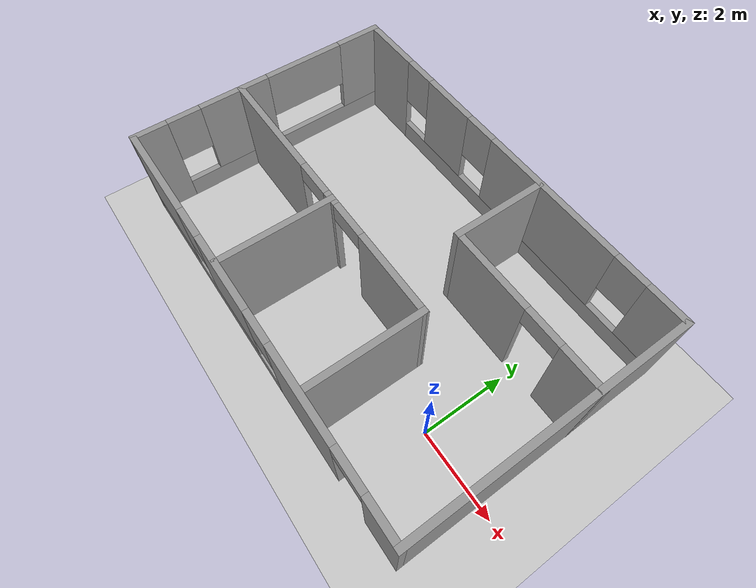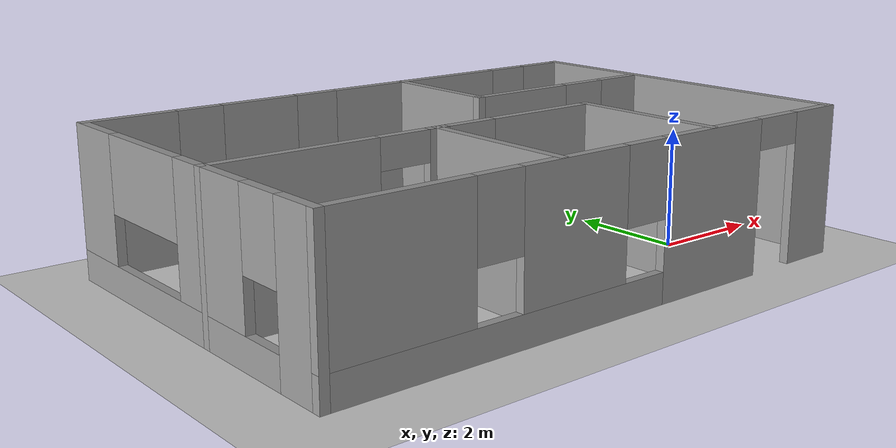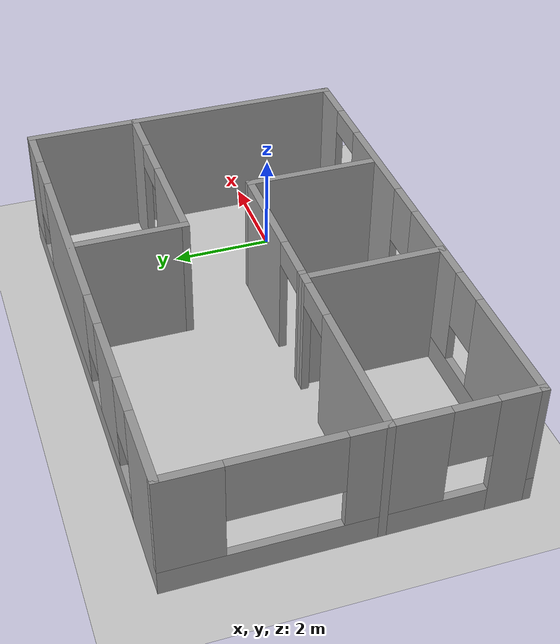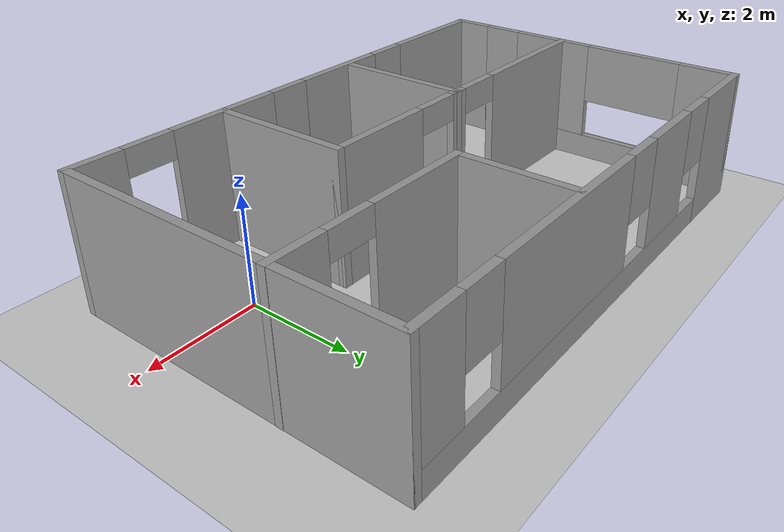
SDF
<sdf version="1.7">
 <world name="default">
  <light name="sun" type="directional">
   <pose>0 0 10 0 -0 0</pose>
   <diffuse>0.8 0.8 0.8 1</diffuse>
   <specular>0.2 0.2 0.2 1</specular>
   <attenuation>
    <range>1000</range>
    <constant>0.9</constant>
    <linear>0.01</linear>
    <quadratic>0.001</quadratic>
   </attenuation>
   <direction>-0.5 0.1 -0.9</direction>
   <spot><inner_angle>0</inner_angle><outer_angle>0</outer_angle><falloff>0</falloff></spot>
  </light>
  <model name="ground_plane">
   <static>1</static>
   <link name="link">
    <collision name="collision">
     <geometry><plane><normal>0 0 1</normal><size>100 100</size></plane></geometry>
     <surface>
      <contact><collide_bitmask>65535</collide_bitmask></contact>
      <friction><ode><mu>100</mu><mu2>50</mu2></ode></friction>
     </surface>
    </collision>
    <visual name="visual">
     <cast_shadows>0</cast_shadows>
     <geometry><plane><normal>0 0 1</normal><size>100 100</size></plane></geometry>
     <material>
      <script><uri>file://media/materials/scripts/gazebo.material</uri><name>Gazebo/Grey</name></script>
     </material>
    </visual>
   </link>
  </model>
  <gravity>0 0 -9.8</gravity>
  <magnetic_field>6e-06 2.3e-05 -4.2e-05</magnetic_field>
  <atmosphere type="adiabatic"/>
  <physics type="ode">
   <max_step_size>0.001</max_step_size>
   <real_time_factor>1</real_time_factor>
   <real_time_update_rate>1000</real_time_update_rate>
  </physics>
  <scene><ambient>0.4 0.4 0.4 1</ambient><background>0.7 0.7 0.7 1</background><shadows>1</shadows></scene>
  <spherical_coordinates>
   <surface_model>EARTH_WGS84</surface_model>
   <latitude_deg>0</latitude_deg>
   <longitude_deg>0</longitude_deg>
   <elevation>0</elevation>
   <heading_deg>0</heading_deg>
  </spherical_coordinates>
  <model name="casa">
   <pose>-3.32131 1.32545 0 0 -0 0</pose>
   <link name="Wall_0">
    <pose>-0.002825 3.175 0 0 -0 0</pose>
    <visual name="Wall_0_Visual_0">
     <pose>-4.20021 0 1.25 0 -0 0</pose>
     <geometry><box><size>1.59958 0.15 2.5</size></box></geometry>
     <material>
      <script><uri>file://media/materials/scripts/gazebo.material</uri><name>Gazebo/Grey</name></script>
      <ambient>1 1 1 1</ambient>
     </material>
     <meta><layer>0</layer></meta>
    </visual>
    <collision name="Wall_0_Collision_0">
     <geometry><box><size>1.59958 0.15 2.5</size></box></geometry>
     <pose>-4.20021 0 1.25 0 -0 0</pose>
    </collision>
    <visual name="Wall_0_Visual_1">
     <pose>0.79979 0 0.25 0 -0 0</pose>
     <geometry><box><size>8.40042 0.15 0.5</size></box></geometry>
     <material>
      <script><uri>file://media/materials/scripts/gazebo.material</uri><name>Gazebo/Grey</name></script>
      <ambient>1 1 1 1</ambient>
     </material>
     <meta><layer>0</layer></meta>
    </visual>
    <collision name="Wall_0_Collision_1">
     <geometry><box><size>8.40042 0.15 0.5</size></box></geometry>
     <pose>0.79979 0 0.25 0 -0 0</pose>
    </collision>
    <visual name="Wall_0_Visual_2">
     <pose>-1.90042 0 1.5 0 -0 0</pose>
     <geometry><box><size>1.4 0.15 2</size></box></geometry>
     <material>
      <script><uri>file://media/materials/scripts/gazebo.material</uri><name>Gazebo/Grey</name></script>
      <ambient>1 1 1 1</ambient>
     </material>
     <meta><layer>0</layer></meta>
    </visual>
    <collision name="Wall_0_Collision_2">
     <geometry><box><size>1.4 0.15 2</size></box></geometry>
     <pose>-1.90042 0 1.5 0 -0 0</pose>
    </collision>
    <visual name="Wall_0_Visual_3">
     <pose>1.39958 0 1.5 0 -0 0</pose>
     <geometry><box><size>3.6 0.15 2</size></box></geometry>
     <material>
      <script><uri>file://media/materials/scripts/gazebo.material</uri><name>Gazebo/Grey</name></script>
      <ambient>1 1 1 1</ambient>
     </material>
     <meta><layer>0</layer></meta>
    </visual>
    <collision name="Wall_0_Collision_3">
     <geometry><box><size>3.6 0.15 2</size></box></geometry>
     <pose>1.39958 0 1.5 0 -0 0</pose>
    </collision>
    <visual name="Wall_0_Visual_4">
     <pose>4.49979 0 1.5 0 -0 0</pose>
     <geometry><box><size>1.00042 0.15 2</size></box></geometry>
     <material>
      <script><uri>file://media/materials/scripts/gazebo.material</uri><name>Gazebo/Grey</name></script>
      <ambient>1 1 1 1</ambient>
     </material>
     <meta><layer>0</layer></meta>
    </visual>
    <collision name="Wall_0_Collision_4">
     <geometry><box><size>1.00042 0.15 2</size></box></geometry>
     <pose>4.49979 0 1.5 0 -0 0</pose>
    </collision>
    <visual name="Wall_0_Visual_5">
     <pose>-3.00042 0 1.9 0 -0 0</pose>
     <geometry><box><size>0.8 0.15 1.2</size></box></geometry>
     <material>
      <script><uri>file://media/materials/scripts/gazebo.material</uri><name>Gazebo/Grey</name></script>
      <ambient>1 1 1 1</ambient>
     </material>
     <meta><layer>0</layer></meta>
    </visual>
    <collision name="Wall_0_Collision_5">
     <geometry><box><size>0.8 0.15 1.2</size></box></geometry>
     <pose>-3.00042 0 1.9 0 -0 0</pose>
    </collision>
    <visual name="Wall_0_Visual_6">
     <pose>-0.80042 0 1.9 0 -0 0</pose>
     <geometry><box><size>0.8 0.15 1.2</size></box></geometry>
     <material>
      <script><uri>file://media/materials/scripts/gazebo.material</uri><name>Gazebo/Grey</name></script>
      <ambient>1 1 1 1</ambient>
     </material>
     <meta><layer>0</layer></meta>
    </visual>
    <collision name="Wall_0_Collision_6">
     <geometry><box><size>0.8 0.15 1.2</size></box></geometry>
     <pose>-0.80042 0 1.9 0 -0 0</pose>
    </collision>
    <visual name="Wall_0_Visual_7">
     <pose>3.59958 0 1.9 0 -0 0</pose>
     <geometry><box><size>0.8 0.15 1.2</size></box></geometry>
     <material>
      <script><uri>file://media/materials/scripts/gazebo.material</uri><name>Gazebo/Grey</name></script>
      <ambient>1 1 1 1</ambient>
     </material>
     <meta><layer>0</layer></meta>
    </visual>
    <collision name="Wall_0_Collision_7">
     <geometry><box><size>0.8 0.15 1.2</size></box></geometry>
     <pose>3.59958 0 1.9 0 -0 0</pose>
    </collision>
   </link>
   <link name="Wall_1">
    <collision name="Wall_1_Collision">
     <geometry><box><size>6.5 0.15 2.5</size></box></geometry>
     <pose>0 0 1.25 0 -0 0</pose>
    </collision>
    <visual name="Wall_1_Visual">
     <pose>0 0 1.25 0 -0 0</pose>
     <geometry><box><size>6.5 0.15 2.5</size></box></geometry>
     <material>
      <script><uri>file://media/materials/scripts/gazebo.material</uri><name>Gazebo/Grey</name></script>
      <ambient>1 1 1 1</ambient>
     </material>
     <meta><layer>0</layer></meta>
    </visual>
    <pose>4.92218 0 0 0 -0 -1.5708</pose>
   </link>
   <link name="Wall_13">
    <pose>3.00283 1.02285 0 0 -0 3.14159</pose>
    <visual name="Wall_13_Visual_0">
     <pose>-1.47629 0 1.25 0 -0 0</pose>
     <geometry><box><size>1.04741 0.15 2.5</size></box></geometry>
     <material>
      <script><uri>file://media/materials/scripts/gazebo.material</uri><name>Gazebo/Grey</name></script>
      <ambient>1 1 1 1</ambient>
     </material>
     <meta><layer>0</layer></meta>
    </visual>
    <collision name="Wall_13_Collision_0">
     <geometry><box><size>1.04741 0.15 2.5</size></box></geometry>
     <pose>-1.47629 0 1.25 0 -0 0</pose>
    </collision>
    <visual name="Wall_13_Visual_1">
     <pose>0.973705 0 1.25 0 -0 0</pose>
     <geometry><box><size>2.05259 0.15 2.5</size></box></geometry>
     <material>
      <script><uri>file://media/materials/scripts/gazebo.material</uri><name>Gazebo/Grey</name></script>
      <ambient>1 1 1 1</ambient>
     </material>
     <meta><layer>0</layer></meta>
    </visual>
    <collision name="Wall_13_Collision_1">
     <geometry><box><size>2.05259 0.15 2.5</size></box></geometry>
     <pose>0.973705 0 1.25 0 -0 0</pose>
    </collision>
    <visual name="Wall_13_Visual_2">
     <pose>-0.50259 0 2.25 0 -0 0</pose>
     <geometry><box><size>0.9 0.15 0.5</size></box></geometry>
     <material>
      <script><uri>file://media/materials/scripts/gazebo.material</uri><name>Gazebo/Grey</name></script>
      <ambient>1 1 1 1</ambient>
     </material>
     <meta><layer>0</layer></meta>
    </visual>
    <collision name="Wall_13_Collision_2">
     <geometry><box><size>0.9 0.15 0.5</size></box></geometry>
     <pose>-0.50259 0 2.25 0 -0 0</pose>
    </collision>
   </link>
   <link name="Wall_14">
    <collision name="Wall_14_Collision">
     <geometry><box><size>2.25 0.15 2.5</size></box></geometry>
     <pose>0 0 1.25 0 -0 0</pose>
    </collision>
    <visual name="Wall_14_Visual">
     <pose>0 0 1.25 0 -0 0</pose>
     <geometry><box><size>2.25 0.15 2.5</size></box></geometry>
     <material>
      <script><uri>file://media/materials/scripts/gazebo.material</uri><name>Gazebo/Grey</name></script>
      <ambient>1 1 1 1</ambient>
     </material>
     <meta><layer>0</layer></meta>
    </visual>
    <pose>1.07783 2.07285 0 0 -0 1.5708</pose>
   </link>
   <link name="Wall_2">
    <pose>-0.002825 -3.175 0 0 -0 3.14159</pose>
    <visual name="Wall_2_Visual_0">
     <pose>-4.49912 0 1.25 0 -0 0</pose>
     <geometry><box><size>1.00176 0.15 2.5</size></box></geometry>
     <material>
      <script><uri>file://media/materials/scripts/gazebo.material</uri><name>Gazebo/Grey</name></script>
      <ambient>1 1 1 1</ambient>
     </material>
     <meta><layer>0</layer></meta>
    </visual>
    <collision name="Wall_2_Collision_0">
     <geometry><box><size>1.00176 0.15 2.5</size></box></geometry>
     <pose>-4.49912 0 1.25 0 -0 0</pose>
    </collision>
    <visual name="Wall_2_Visual_1">
     <pose>-2.02282 0 1.25 0 -0 0</pose>
     <geometry><box><size>2.15083 0.15 2.5</size></box></geometry>
     <material>
      <script><uri>file://media/materials/scripts/gazebo.material</uri><name>Gazebo/Grey</name></script>
      <ambient>1 1 1 1</ambient>
     </material>
     <meta><layer>0</layer></meta>
    </visual>
    <collision name="Wall_2_Collision_1">
     <geometry><box><size>2.15083 0.15 2.5</size></box></geometry>
     <pose>-2.02282 0 1.25 0 -0 0</pose>
    </collision>
    <visual name="Wall_2_Visual_2">
     <pose>2.0263 0 0.25 0 -0 0</pose>
     <geometry><box><size>5.94741 0.15 0.5</size></box></geometry>
     <material>
      <script><uri>file://media/materials/scripts/gazebo.material</uri><name>Gazebo/Grey</name></script>
      <ambient>1 1 1 1</ambient>
     </material>
     <meta><layer>0</layer></meta>
    </visual>
    <collision name="Wall_2_Collision_2">
     <geometry><box><size>5.94741 0.15 0.5</size></box></geometry>
     <pose>2.0263 0 0.25 0 -0 0</pose>
    </collision>
    <visual name="Wall_2_Visual_3">
     <pose>0.830854 0 1.5 0 -0 0</pose>
     <geometry><box><size>1.95652 0.15 2</size></box></geometry>
     <material>
      <script><uri>file://media/materials/scripts/gazebo.material</uri><name>Gazebo/Grey</name></script>
      <ambient>1 1 1 1</ambient>
     </material>
     <meta><layer>0</layer></meta>
    </visual>
    <collision name="Wall_2_Collision_3">
     <geometry><box><size>1.95652 0.15 2</size></box></geometry>
     <pose>0.830854 0 1.5 0 -0 0</pose>
    </collision>
    <visual name="Wall_2_Visual_4">
     <pose>3.80456 0 1.5 0 -0 0</pose>
     <geometry><box><size>2.39088 0.15 2</size></box></geometry>
     <material>
      <script><uri>file://media/materials/scripts/gazebo.material</uri><name>Gazebo/Grey</name></script>
      <ambient>1 1 1 1</ambient>
     </material>
     <meta><layer>0</layer></meta>
    </visual>
    <collision name="Wall_2_Collision_4">
     <geometry><box><size>2.39088 0.15 2</size></box></geometry>
     <pose>3.80456 0 1.5 0 -0 0</pose>
    </collision>
    <visual name="Wall_2_Visual_5">
     <pose>-0.547407 0 1.9 0 -0 0</pose>
     <geometry><box><size>0.8 0.15 1.2</size></box></geometry>
     <material>
      <script><uri>file://media/materials/scripts/gazebo.material</uri><name>Gazebo/Grey</name></script>
      <ambient>1 1 1 1</ambient>
     </material>
     <meta><layer>0</layer></meta>
    </visual>
    <collision name="Wall_2_Collision_5">
     <geometry><box><size>0.8 0.15 1.2</size></box></geometry>
     <pose>-0.547407 0 1.9 0 -0 0</pose>
    </collision>
    <visual name="Wall_2_Visual_6">
     <pose>2.20912 0 1.9 0 -0 0</pose>
     <geometry><box><size>0.8 0.15 1.2</size></box></geometry>
     <material>
      <script><uri>file://media/materials/scripts/gazebo.material</uri><name>Gazebo/Grey</name></script>
      <ambient>1 1 1 1</ambient>
     </material>
     <meta><layer>0</layer></meta>
    </visual>
    <collision name="Wall_2_Collision_6">
     <geometry><box><size>0.8 0.15 1.2</size></box></geometry>
     <pose>2.20912 0 1.9 0 -0 0</pose>
    </collision>
    <visual name="Wall_2_Visual_7">
     <pose>-3.54824 0 2.25 0 -0 0</pose>
     <geometry><box><size>0.9 0.15 0.5</size></box></geometry>
     <material>
      <script><uri>file://media/materials/scripts/gazebo.material</uri><name>Gazebo/Grey</name></script>
      <ambient>1 1 1 1</ambient>
     </material>
     <meta><layer>0</layer></meta>
    </visual>
    <collision name="Wall_2_Collision_7">
     <geometry><box><size>0.9 0.15 0.5</size></box></geometry>
     <pose>-3.54824 0 2.25 0 -0 0</pose>
    </collision>
   </link>
   <link name="Wall_3">
    <pose>-4.92783 0 0 0 -0 1.5708</pose>
    <visual name="Wall_3_Visual_0">
     <pose>-2.82311 0 1.25 0 -0 0</pose>
     <geometry><box><size>0.853776 0.15 2.5</size></box></geometry>
     <material>
      <script><uri>file://media/materials/scripts/gazebo.material</uri><name>Gazebo/Grey</name></script>
      <ambient>1 1 1 1</ambient>
     </material>
     <meta><layer>0</layer></meta>
    </visual>
    <collision name="Wall_3_Collision_0">
     <geometry><box><size>0.853776 0.15 2.5</size></box></geometry>
     <pose>-2.82311 0 1.25 0 -0 0</pose>
    </collision>
    <visual name="Wall_3_Visual_1">
     <pose>0.426888 0 0.25 0 -0 0</pose>
     <geometry><box><size>5.64622 0.15 0.5</size></box></geometry>
     <material>
      <script><uri>file://media/materials/scripts/gazebo.material</uri><name>Gazebo/Grey</name></script>
      <ambient>1 1 1 1</ambient>
     </material>
     <meta><layer>0</layer></meta>
    </visual>
    <collision name="Wall_3_Collision_1">
     <geometry><box><size>5.64622 0.15 0.5</size></box></geometry>
     <pose>0.426888 0 0.25 0 -0 0</pose>
    </collision>
    <visual name="Wall_3_Visual_2">
     <pose>-0.73318 0 1.5 0 -0 0</pose>
     <geometry><box><size>1.72609 0.15 2</size></box></geometry>
     <material>
      <script><uri>file://media/materials/scripts/gazebo.material</uri><name>Gazebo/Grey</name></script>
      <ambient>1 1 1 1</ambient>
     </material>
     <meta><layer>0</layer></meta>
    </visual>
    <collision name="Wall_3_Collision_2">
     <geometry><box><size>1.72609 0.15 2</size></box></geometry>
     <pose>-0.73318 0 1.5 0 -0 0</pose>
    </collision>
    <visual name="Wall_3_Visual_3">
     <pose>2.67689 0 1.5 0 -0 0</pose>
     <geometry><box><size>1.14622 0.15 2</size></box></geometry>
     <material>
      <script><uri>file://media/materials/scripts/gazebo.material</uri><name>Gazebo/Grey</name></script>
      <ambient>1 1 1 1</ambient>
     </material>
     <meta><layer>0</layer></meta>
    </visual>
    <collision name="Wall_3_Collision_3">
     <geometry><box><size>1.14622 0.15 2</size></box></geometry>
     <pose>2.67689 0 1.5 0 -0 0</pose>
    </collision>
    <visual name="Wall_3_Visual_4">
     <pose>-1.99622 0 1.9 0 -0 0</pose>
     <geometry><box><size>0.8 0.15 1.2</size></box></geometry>
     <material>
      <script><uri>file://media/materials/scripts/gazebo.material</uri><name>Gazebo/Grey</name></script>
      <ambient>1 1 1 1</ambient>
     </material>
     <meta><layer>0</layer></meta>
    </visual>
    <collision name="Wall_3_Collision_4">
     <geometry><box><size>0.8 0.15 1.2</size></box></geometry>
     <pose>-1.99622 0 1.9 0 -0 0</pose>
    </collision>
    <visual name="Wall_3_Visual_5">
     <pose>1.11682 0 1.9 0 -0 0</pose>
     <geometry><box><size>1.97391 0.15 1.2</size></box></geometry>
     <material>
      <script><uri>file://media/materials/scripts/gazebo.material</uri><name>Gazebo/Grey</name></script>
      <ambient>1 1 1 1</ambient>
     </material>
     <meta><layer>0</layer></meta>
    </visual>
    <collision name="Wall_3_Collision_5">
     <geometry><box><size>1.97391 0.15 1.2</size></box></geometry>
     <pose>1.11682 0 1.9 0 -0 0</pose>
    </collision>
   </link>
   <link name="Wall_5">
    <pose>-3.00283 -0.546011 0 0 -0 0</pose>
    <visual name="Wall_5_Visual_0">
     <pose>-0.58588 0 1.25 0 -0 0</pose>
     <geometry><box><size>2.82824 0.15 2.5</size></box></geometry>
     <material>
      <script><uri>file://media/materials/scripts/gazebo.material</uri><name>Gazebo/Grey</name></script>
      <ambient>1 1 1 1</ambient>
     </material>
     <meta><layer>0</layer></meta>
    </visual>
    <collision name="Wall_5_Collision_0">
     <geometry><box><size>2.82824 0.15 2.5</size></box></geometry>
     <pose>-0.58588 0 1.25 0 -0 0</pose>
    </collision>
    <visual name="Wall_5_Visual_1">
     <pose>1.86412 0 1.25 0 -0 0</pose>
     <geometry><box><size>0.271759 0.15 2.5</size></box></geometry>
     <material>
      <script><uri>file://media/materials/scripts/gazebo.material</uri><name>Gazebo/Grey</name></script>
      <ambient>1 1 1 1</ambient>
     </material>
     <meta><layer>0</layer></meta>
    </visual>
    <collision name="Wall_5_Collision_1">
     <geometry><box><size>0.271759 0.15 2.5</size></box></geometry>
     <pose>1.86412 0 1.25 0 -0 0</pose>
    </collision>
    <visual name="Wall_5_Visual_2">
     <pose>1.27824 0 2.25 0 -0 0</pose>
     <geometry><box><size>0.9 0.15 0.5</size></box></geometry>
     <material>
      <script><uri>file://media/materials/scripts/gazebo.material</uri><name>Gazebo/Grey</name></script>
      <ambient>1 1 1 1</ambient>
     </material>
     <meta><layer>0</layer></meta>
    </visual>
    <collision name="Wall_5_Collision_2">
     <geometry><box><size>0.9 0.15 0.5</size></box></geometry>
     <pose>1.27824 0 2.25 0 -0 0</pose>
    </collision>
   </link>
   <link name="Wall_6">
    <collision name="Wall_6_Collision">
     <geometry><box><size>2.75 0.15 2.5</size></box></geometry>
     <pose>0 0 1.25 0 -0 0</pose>
    </collision>
    <visual name="Wall_6_Visual">
     <pose>0 0 1.25 0 -0 0</pose>
     <geometry><box><size>2.75 0.15 2.5</size></box></geometry>
     <material>
      <script><uri>file://media/materials/scripts/gazebo.material</uri><name>Gazebo/Grey</name></script>
      <ambient>1 1 1 1</ambient>
     </material>
     <meta><layer>0</layer></meta>
    </visual>
    <pose>-1.07783 -1.84601 0 0 -0 -1.5708</pose>
   </link>
   <link name="Wall_8">
    <pose>0.472175 -0.546011 0 0 -0 0</pose>
    <visual name="Wall_8_Visual_0">
     <pose>-1.50088 0 1.25 0 -0 0</pose>
     <geometry><box><size>0.248241 0.15 2.5</size></box></geometry>
     <material>
      <script><uri>file://media/materials/scripts/gazebo.material</uri><name>Gazebo/Grey</name></script>
      <ambient>1 1 1 1</ambient>
     </material>
     <meta><layer>0</layer></meta>
    </visual>
    <collision name="Wall_8_Collision_0">
     <geometry><box><size>0.248241 0.15 2.5</size></box></geometry>
     <pose>-1.50088 0 1.25 0 -0 0</pose>
    </collision>
    <visual name="Wall_8_Visual_1">
     <pose>0.57412 0 1.25 0 -0 0</pose>
     <geometry><box><size>2.10176 0.15 2.5</size></box></geometry>
     <material>
      <script><uri>file://media/materials/scripts/gazebo.material</uri><name>Gazebo/Grey</name></script>
      <ambient>1 1 1 1</ambient>
     </material>
     <meta><layer>0</layer></meta>
    </visual>
    <collision name="Wall_8_Collision_1">
     <geometry><box><size>2.10176 0.15 2.5</size></box></geometry>
     <pose>0.57412 0 1.25 0 -0 0</pose>
    </collision>
    <visual name="Wall_8_Visual_2">
     <pose>-0.926759 0 2.25 0 -0 0</pose>
     <geometry><box><size>0.9 0.15 0.5</size></box></geometry>
     <material>
      <script><uri>file://media/materials/scripts/gazebo.material</uri><name>Gazebo/Grey</name></script>
      <ambient>1 1 1 1</ambient>
     </material>
     <meta><layer>0</layer></meta>
    </visual>
    <collision name="Wall_8_Collision_2">
     <geometry><box><size>0.9 0.15 0.5</size></box></geometry>
     <pose>-0.926759 0 2.25 0 -0 0</pose>
    </collision>
   </link>
   <link name="Wall_9">
    <collision name="Wall_9_Collision">
     <geometry><box><size>2.75 0.15 2.5</size></box></geometry>
     <pose>0 0 1.25 0 -0 0</pose>
    </collision>
    <visual name="Wall_9_Visual">
     <pose>0 0 1.25 0 -0 0</pose>
     <geometry><box><size>2.75 0.15 2.5</size></box></geometry>
     <material>
      <script><uri>file://media/materials/scripts/gazebo.material</uri><name>Gazebo/Grey</name></script>
      <ambient>1 1 1 1</ambient>
     </material>
     <meta><layer>0</layer></meta>
    </visual>
    <pose>2.02217 -1.84601 0 0 -0 -1.5708</pose>
   </link>
   <static>1</static>
  </model>
 </world>
</sdf>
